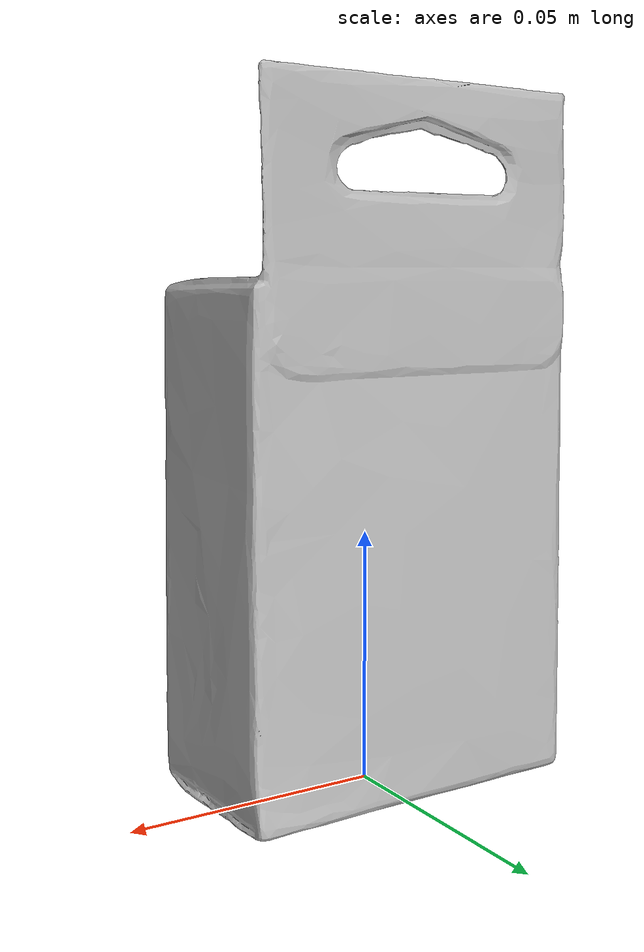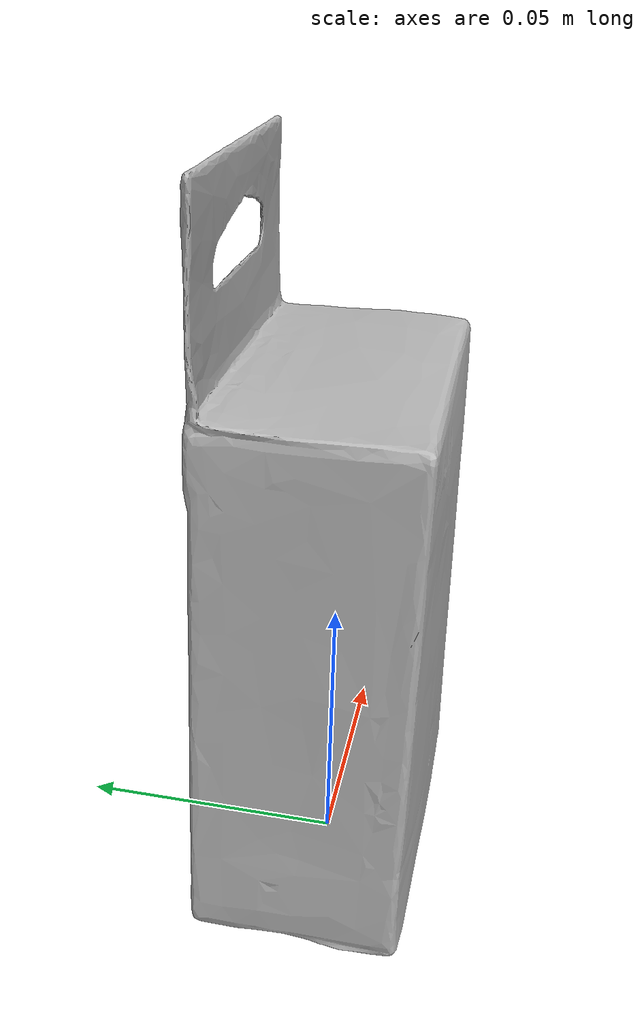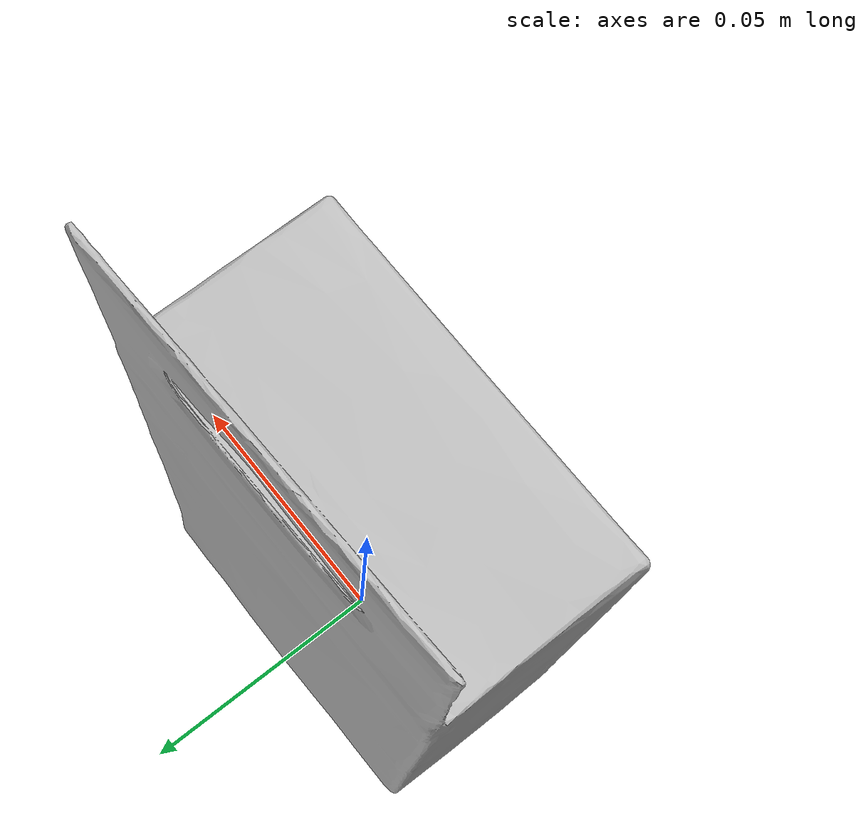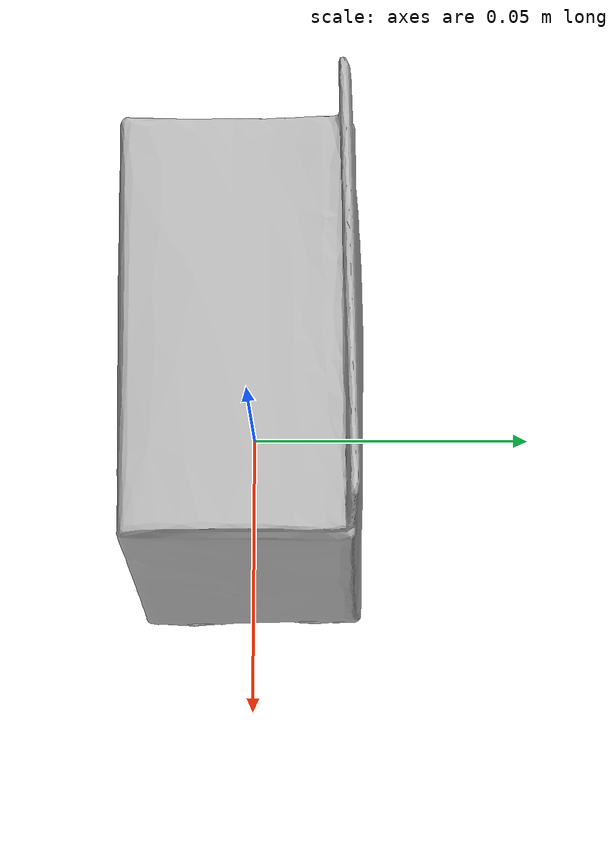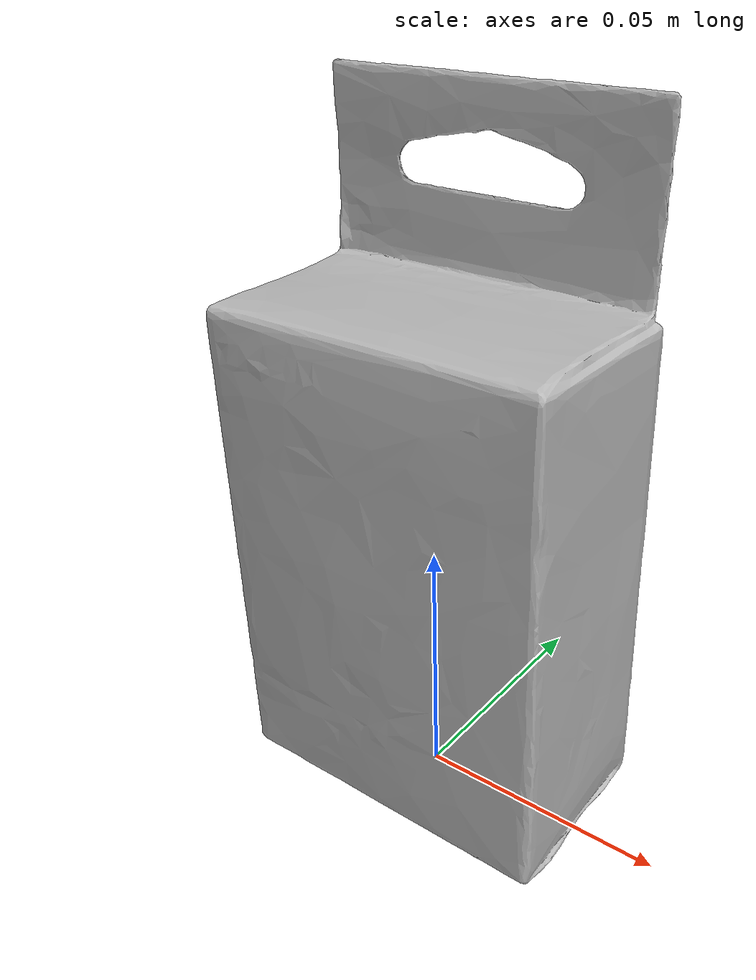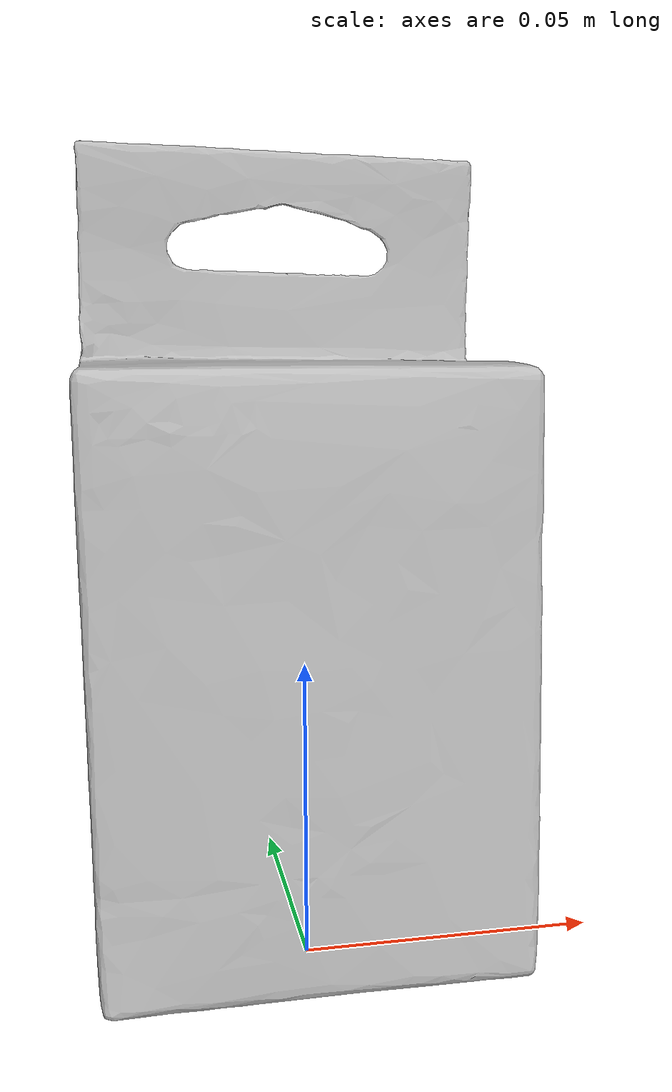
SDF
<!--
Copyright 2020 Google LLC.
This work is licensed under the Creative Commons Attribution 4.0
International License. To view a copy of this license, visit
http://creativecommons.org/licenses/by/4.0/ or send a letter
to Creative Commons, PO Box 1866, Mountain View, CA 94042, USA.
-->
<?xml version="1.0" ?>
<sdf version="1.6">
  <model name="Dell_Series_9_Color_Ink_Cartridge_MK993_High_Yield">
    <link name="link_0">
      <visual name="visual">
        <geometry>
          <mesh>
            <uri>meshes/model.obj</uri>
          </mesh>
        </geometry>
      </visual>
      <collision name="collision_0">
        <geometry>
          <mesh>
            <uri>meshes/model.obj</uri>
          </mesh>
        </geometry>
      </collision>
    </link>
  </model>
</sdf>
